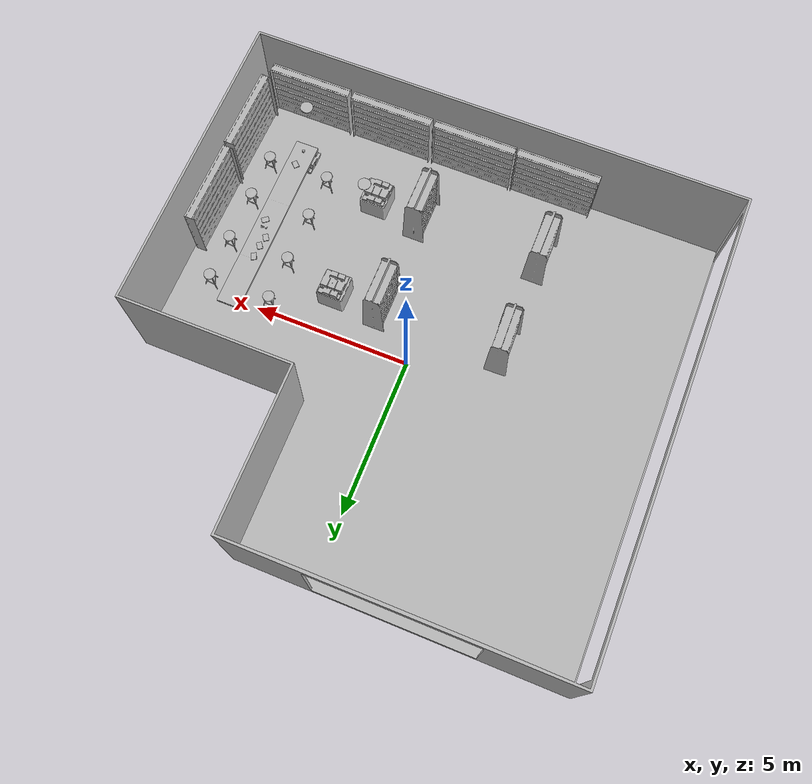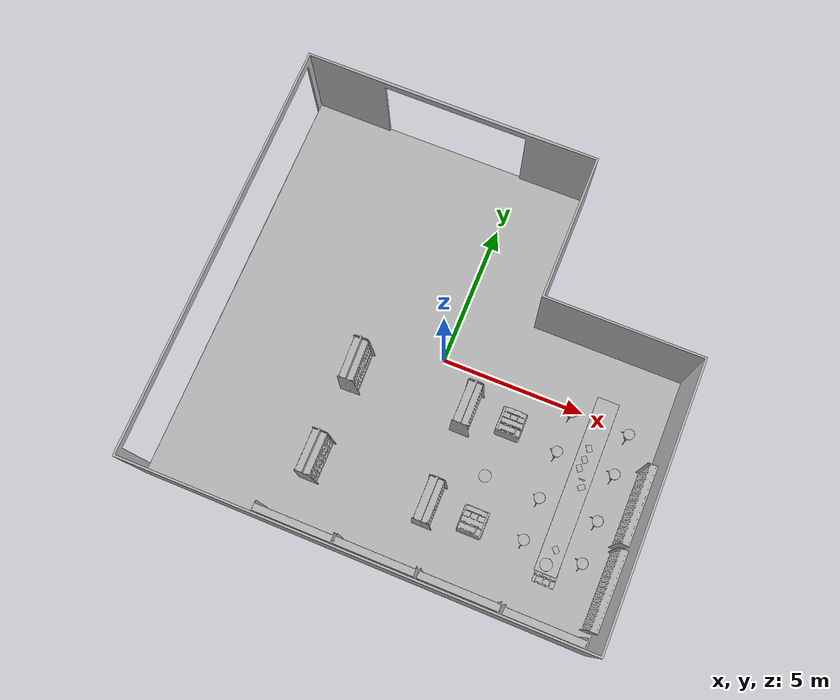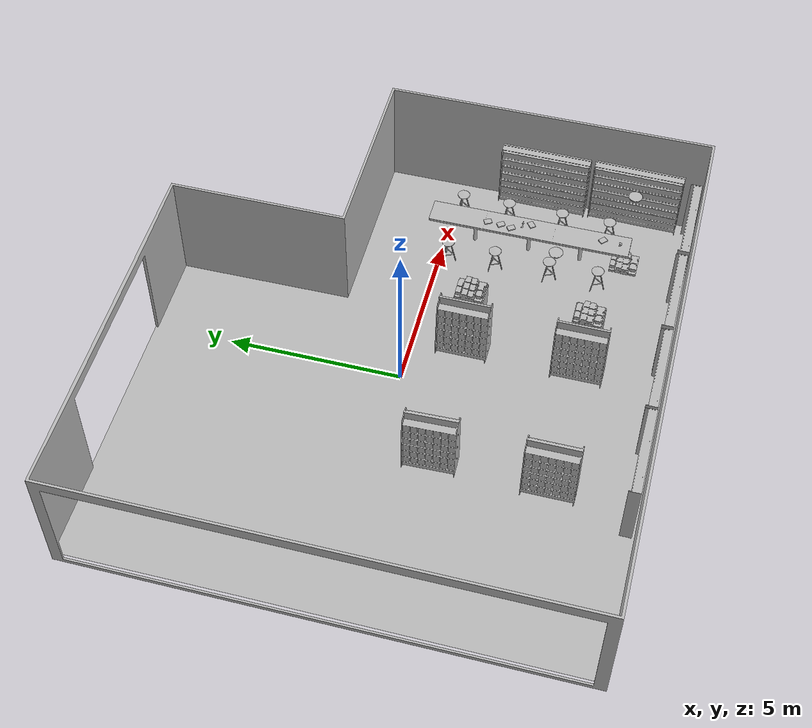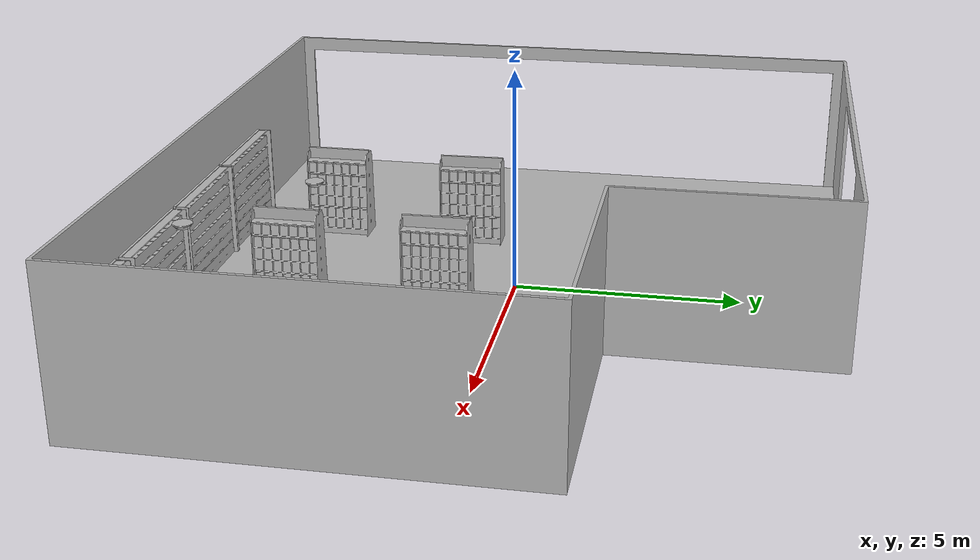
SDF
<sdf version="1.7">
 <world name="default">
  <model name="Bicycle_01_001">
   <frame name="aws_robomaker_retail_Bicycle_01::__model__" attached_to="aws_robomaker_retail_Bicycle_01::link">
    <pose relative_to="__model__">0 0 0 0 -0 0</pose>
   </frame>
   <link name="aws_robomaker_retail_Bicycle_01::link">
    <inertial>
     <mass>0.04</mass>
     <inertia><ixx>0.1</ixx><ixy>0</ixy><ixz>0</ixz><iyy>0.1</iyy><iyz>0</iyz><izz>0.01</izz></inertia>
    </inertial>
    <collision name="collision">
     <geometry>
      <mesh>
       <uri>file://models/aws_robomaker_retail_Bicycle_01/meshes/aws_Bicycle_01_collision.DAE</uri>
       <scale>1 1 1</scale>
      </mesh>
     </geometry>
    </collision>
    <visual name="visual">
     <geometry>
      <mesh><uri>file://models/aws_robomaker_retail_Bicycle_01/meshes/aws_Bicycle_01_visual.DAE</uri></mesh>
     </geometry>
     <meta><layer>1</layer></meta>
    </visual>
    <pose relative_to="aws_robomaker_retail_Bicycle_01::__model__">0 0 0 0 -0 0</pose>
   </link>
   <static>1</static>
   <pose>5.68125 -2.24245 0.931246 2e-06 -2.4e-05 -0</pose>
  </model>
  <model name="BookE_01_001">
   <frame name="aws_robomaker_retail_BookE_01::__model__" attached_to="aws_robomaker_retail_BookE_01::link">
    <pose relative_to="__model__">0 0 0 0 -0 0</pose>
   </frame>
   <link name="aws_robomaker_retail_BookE_01::link">
    <inertial>
     <mass>1</mass>
     <inertia><ixy>0</ixy><ixz>0</ixz><iyz>0</iyz><ixx>0.0666</ixx><iyy>0.0346</iyy><izz>0.0986</izz></inertia>
    </inertial>
    <collision name="collision">
     <geometry>
      <mesh>
       <uri>file://models/aws_robomaker_retail_BookE_01/meshes/aws_BookE_01_collision.DAE</uri>
       <scale>1 1 1</scale>
      </mesh>
     </geometry>
    </collision>
    <visual name="visual">
     <geometry>
      <mesh><uri>file://models/aws_robomaker_retail_BookE_01/meshes/aws_BookE_01_visual.DAE</uri></mesh>
     </geometry>
     <meta><layer>1</layer></meta>
    </visual>
    <pose relative_to="aws_robomaker_retail_BookE_01::__model__">0 0 0 0 -0 0</pose>
   </link>
   <static>1</static>
   <pose>5.47653 -1.93253 0.948933 4e-06 1e-06 -2.54352</pose>
  </model>
  <model name="BookE_01_003">
   <frame name="aws_robomaker_retail_BookE_01::__model__" attached_to="aws_robomaker_retail_BookE_01::link">
    <pose relative_to="__model__">0 0 0 0 -0 0</pose>
   </frame>
   <link name="aws_robomaker_retail_BookE_01::link">
    <inertial>
     <mass>1</mass>
     <inertia><ixy>0</ixy><ixz>0</ixz><iyz>0</iyz><ixx>0.0666</ixx><iyy>0.0346</iyy><izz>0.0986</izz></inertia>
    </inertial>
    <collision name="collision">
     <geometry>
      <mesh>
       <uri>file://models/aws_robomaker_retail_BookE_01/meshes/aws_BookE_01_collision.DAE</uri>
       <scale>1 1 1</scale>
      </mesh>
     </geometry>
    </collision>
    <visual name="visual">
     <geometry>
      <mesh><uri>file://models/aws_robomaker_retail_BookE_01/meshes/aws_BookE_01_visual.DAE</uri></mesh>
     </geometry>
     <meta><layer>1</layer></meta>
    </visual>
    <pose relative_to="aws_robomaker_retail_BookE_01::__model__">0 0 0 0 -0 0</pose>
   </link>
   <static>1</static>
   <pose>5.55255 -1.21421 0.948933 4e-06 -1e-06 -2.65431</pose>
  </model>
  <model name="BookE_01_004">
   <frame name="aws_robomaker_retail_BookE_01::__model__" attached_to="aws_robomaker_retail_BookE_01::link">
    <pose relative_to="__model__">0 0 0 0 -0 0</pose>
   </frame>
   <link name="aws_robomaker_retail_BookE_01::link">
    <inertial>
     <mass>1</mass>
     <inertia><ixy>0</ixy><ixz>0</ixz><iyz>0</iyz><ixx>0.0666</ixx><iyy>0.0346</iyy><izz>0.0986</izz></inertia>
    </inertial>
    <collision name="collision">
     <geometry>
      <mesh>
       <uri>file://models/aws_robomaker_retail_BookE_01/meshes/aws_BookE_01_collision.DAE</uri>
       <scale>1 1 1</scale>
      </mesh>
     </geometry>
    </collision>
    <visual name="visual">
     <geometry>
      <mesh><uri>file://models/aws_robomaker_retail_BookE_01/meshes/aws_BookE_01_visual.DAE</uri></mesh>
     </geometry>
     <meta><layer>1</layer></meta>
    </visual>
    <pose relative_to="aws_robomaker_retail_BookE_01::__model__">0 0 0 0 -0 0</pose>
   </link>
   <static>1</static>
   <pose>5.67723 -4.6492 0.946394 0.0001 6e-06 -2.35575</pose>
  </model>
  <model name="BookE_01_005">
   <frame name="aws_robomaker_retail_BookE_01::__model__" attached_to="aws_robomaker_retail_BookE_01::link">
    <pose relative_to="__model__">0 0 0 0 -0 0</pose>
   </frame>
   <link name="aws_robomaker_retail_BookE_01::link">
    <inertial>
     <mass>1</mass>
     <inertia><ixy>0</ixy><ixz>0</ixz><iyz>0</iyz><ixx>0.0666</ixx><iyy>0.0346</iyy><izz>0.0986</izz></inertia>
    </inertial>
    <collision name="collision">
     <geometry>
      <mesh>
       <uri>file://models/aws_robomaker_retail_BookE_01/meshes/aws_BookE_01_collision.DAE</uri>
       <scale>1 1 1</scale>
      </mesh>
     </geometry>
    </collision>
    <visual name="visual">
     <geometry>
      <mesh><uri>file://models/aws_robomaker_retail_BookE_01/meshes/aws_BookE_01_visual.DAE</uri></mesh>
     </geometry>
     <meta><layer>1</layer></meta>
    </visual>
    <pose relative_to="aws_robomaker_retail_BookE_01::__model__">0 0 0 0 -0 0</pose>
   </link>
   <static>1</static>
   <pose>5.53815 -1.61032 0.948933 0 0 -2.5269</pose>
  </model>
  <model name="BookE_01_011">
   <frame name="aws_robomaker_retail_BookE_01::__model__" attached_to="aws_robomaker_retail_BookE_01::link">
    <pose relative_to="__model__">0 0 0 0 -0 0</pose>
   </frame>
   <link name="aws_robomaker_retail_BookE_01::link">
    <inertial>
     <mass>1</mass>
     <inertia><ixy>0</ixy><ixz>0</ixz><iyz>0</iyz><ixx>0.0666</ixx><iyy>0.0346</iyy><izz>0.0986</izz></inertia>
    </inertial>
    <collision name="collision">
     <geometry>
      <mesh>
       <uri>file://models/aws_robomaker_retail_BookE_01/meshes/aws_BookE_01_collision.DAE</uri>
       <scale>1 1 1</scale>
      </mesh>
     </geometry>
    </collision>
    <visual name="visual">
     <geometry>
      <mesh><uri>file://models/aws_robomaker_retail_BookE_01/meshes/aws_BookE_01_visual.DAE</uri></mesh>
     </geometry>
     <meta><layer>1</layer></meta>
    </visual>
    <pose relative_to="aws_robomaker_retail_BookE_01::__model__">0 0 0 0 -0 0</pose>
   </link>
   <static>1</static>
   <pose>5.74923 -2.49202 0.948933 2e-06 1e-06 2.22339</pose>
  </model>
  <model name="BookF_01_001">
   <frame name="aws_robomaker_retail_BookF_01::__model__" attached_to="aws_robomaker_retail_BookF_01::link">
    <pose relative_to="__model__">0 0 0 0 -0 0</pose>
   </frame>
   <link name="aws_robomaker_retail_BookF_01::link">
    <inertial>
     <mass>10</mass>
     <inertia>
      <ixx>0.583817</ixx>
      <ixy>0</ixy>
      <ixz>0</ixz>
      <iyy>0.502925</iyy>
      <iyz>0</iyz>
      <izz>0.99304</izz>
     </inertia>
    </inertial>
    <collision name="collision">
     <geometry>
      <mesh>
       <uri>file://models/aws_robomaker_retail_BookF_01/meshes/aws_BookF_01_collision.DAE</uri>
       <scale>1 1 1</scale>
      </mesh>
     </geometry>
    </collision>
    <visual name="visual">
     <geometry>
      <mesh><uri>file://models/aws_robomaker_retail_BookF_01/meshes/aws_BookF_01_visual.DAE</uri></mesh>
     </geometry>
     <meta><layer>1</layer></meta>
    </visual>
    <pose relative_to="aws_robomaker_retail_BookF_01::__model__">0 0 0 0 -0 0</pose>
   </link>
   <static>1</static>
   <pose>2.93178 -1.30325 0.770041 0.003448 -1.1e-05 0.003114</pose>
  </model>
  <model name="BookD_01_001">
   <frame name="aws_robomaker_retail_BookD_01::__model__" attached_to="aws_robomaker_retail_BookD_01::link">
    <pose relative_to="__model__">0 0 0 0 -0 0</pose>
   </frame>
   <link name="aws_robomaker_retail_BookD_01::link">
    <inertial><mass>0.5</mass></inertial>
    <collision name="collision">
     <geometry>
      <mesh>
       <uri>file://models/aws_robomaker_retail_BookD_01/meshes/aws_BookD_01_collision.DAE</uri>
       <scale>1 1 1</scale>
      </mesh>
     </geometry>
    </collision>
    <visual name="visual">
     <geometry>
      <mesh><uri>file://models/aws_robomaker_retail_BookD_01/meshes/aws_BookD_01_visual.DAE</uri></mesh>
     </geometry>
     <meta><layer>1</layer></meta>
    </visual>
    <pose relative_to="aws_robomaker_retail_BookD_01::__model__">0 0 0 0 -0 0</pose>
   </link>
   <static>1</static>
   <pose>5.72005 -5.36588 0.022179 0.003452 -1e-06 0.000652</pose>
  </model>
  <model name="BookF_01_002">
   <frame name="aws_robomaker_retail_BookF_01::__model__" attached_to="aws_robomaker_retail_BookF_01::link">
    <pose relative_to="__model__">0 0 0 0 -0 0</pose>
   </frame>
   <link name="aws_robomaker_retail_BookF_01::link">
    <inertial>
     <mass>10</mass>
     <inertia>
      <ixx>0.583817</ixx>
      <ixy>0</ixy>
      <ixz>0</ixz>
      <iyy>0.502925</iyy>
      <iyz>0</iyz>
      <izz>0.99304</izz>
     </inertia>
    </inertial>
    <collision name="collision">
     <geometry>
      <mesh>
       <uri>file://models/aws_robomaker_retail_BookF_01/meshes/aws_BookF_01_collision.DAE</uri>
       <scale>1 1 1</scale>
      </mesh>
     </geometry>
    </collision>
    <visual name="visual">
     <geometry>
      <mesh><uri>file://models/aws_robomaker_retail_BookF_01/meshes/aws_BookF_01_visual.DAE</uri></mesh>
     </geometry>
     <meta><layer>1</layer></meta>
    </visual>
    <pose relative_to="aws_robomaker_retail_BookF_01::__model__">0 0 0 0 -0 0</pose>
   </link>
   <static>1</static>
   <pose>2.90298 -4.76075 0.75826 0.00345 6e-06 -0.00225</pose>
  </model>
  <model name="BookshelfA_01_001">
   <frame name="aws_robomaker_retail_BookshelfA_01::__model__" attached_to="aws_robomaker_retail_BookshelfA_01::link">
    <pose relative_to="__model__">0 0 0 0 -0 0</pose>
   </frame>
   <link name="aws_robomaker_retail_BookshelfA_01::link">
    <inertial>
     <mass>50</mass>
     <inertia><ixx>27.7341</ixx><ixy>0</ixy><ixz>0</ixz><iyy>20.9361</iyy><iyz>0</iyz><izz>11.3596</izz></inertia>
    </inertial>
    <collision name="collision">
     <geometry>
      <mesh>
       <uri>file://models/aws_robomaker_retail_BookshelfA_01/meshes/aws_BookshelfA_01_collision.DAE</uri>
       <scale>1 1 1</scale>
      </mesh>
     </geometry>
    </collision>
    <visual name="visual">
     <geometry>
      <mesh><uri>file://models/aws_robomaker_retail_BookshelfA_01/meshes/aws_BookshelfA_01_visual.DAE</uri></mesh>
     </geometry>
     <meta><layer>1</layer></meta>
    </visual>
    <pose relative_to="aws_robomaker_retail_BookshelfA_01::__model__">0 0 0 0 -0 0</pose>
   </link>
   <static>1</static>
   <pose>1.40515 -1.44974 0.03755 0.00349 -3e-06 0.000696</pose>
  </model>
  <model name="BookshelfA_01_002">
   <frame name="aws_robomaker_retail_BookshelfA_01::__model__" attached_to="aws_robomaker_retail_BookshelfA_01::link">
    <pose relative_to="__model__">0 0 0 0 -0 0</pose>
   </frame>
   <link name="aws_robomaker_retail_BookshelfA_01::link">
    <inertial>
     <mass>50</mass>
     <inertia><ixx>27.7341</ixx><ixy>0</ixy><ixz>0</ixz><iyy>20.9361</iyy><iyz>0</iyz><izz>11.3596</izz></inertia>
    </inertial>
    <collision name="collision">
     <geometry>
      <mesh>
       <uri>file://models/aws_robomaker_retail_BookshelfA_01/meshes/aws_BookshelfA_01_collision.DAE</uri>
       <scale>1 1 1</scale>
      </mesh>
     </geometry>
    </collision>
    <visual name="visual">
     <geometry>
      <mesh><uri>file://models/aws_robomaker_retail_BookshelfA_01/meshes/aws_BookshelfA_01_visual.DAE</uri></mesh>
     </geometry>
     <meta><layer>1</layer></meta>
    </visual>
    <pose relative_to="aws_robomaker_retail_BookshelfA_01::__model__">0 0 0 0 -0 0</pose>
   </link>
   <static>1</static>
   <pose>1.40515 -4.76165 0.003411 0 -0 0</pose>
  </model>
  <model name="BookshelfA_01_003">
   <frame name="aws_robomaker_retail_BookshelfA_01::__model__" attached_to="aws_robomaker_retail_BookshelfA_01::link">
    <pose relative_to="__model__">0 0 0 0 -0 0</pose>
   </frame>
   <link name="aws_robomaker_retail_BookshelfA_01::link">
    <inertial>
     <mass>50</mass>
     <inertia><ixx>27.7341</ixx><ixy>0</ixy><ixz>0</ixz><iyy>20.9361</iyy><iyz>0</iyz><izz>11.3596</izz></inertia>
    </inertial>
    <collision name="collision">
     <geometry>
      <mesh>
       <uri>file://models/aws_robomaker_retail_BookshelfA_01/meshes/aws_BookshelfA_01_collision.DAE</uri>
       <scale>1 1 1</scale>
      </mesh>
     </geometry>
    </collision>
    <visual name="visual">
     <geometry>
      <mesh><uri>file://models/aws_robomaker_retail_BookshelfA_01/meshes/aws_BookshelfA_01_visual.DAE</uri></mesh>
     </geometry>
     <meta><layer>1</layer></meta>
    </visual>
    <pose relative_to="aws_robomaker_retail_BookshelfA_01::__model__">0 0 0 0 -0 0</pose>
   </link>
   <static>1</static>
   <pose>-2.55449 -1.48746 0.006337 0.001313 -0.001987 0.031824</pose>
  </model>
  <model name="BookshelfA_01_004">
   <frame name="aws_robomaker_retail_BookshelfA_01::__model__" attached_to="aws_robomaker_retail_BookshelfA_01::link">
    <pose relative_to="__model__">0 0 0 0 -0 0</pose>
   </frame>
   <link name="aws_robomaker_retail_BookshelfA_01::link">
    <inertial>
     <mass>50</mass>
     <inertia><ixx>27.7341</ixx><ixy>0</ixy><ixz>0</ixz><iyy>20.9361</iyy><iyz>0</iyz><izz>11.3596</izz></inertia>
    </inertial>
    <collision name="collision">
     <geometry>
      <mesh>
       <uri>file://models/aws_robomaker_retail_BookshelfA_01/meshes/aws_BookshelfA_01_collision.DAE</uri>
       <scale>1 1 1</scale>
      </mesh>
     </geometry>
    </collision>
    <visual name="visual">
     <geometry>
      <mesh><uri>file://models/aws_robomaker_retail_BookshelfA_01/meshes/aws_BookshelfA_01_visual.DAE</uri></mesh>
     </geometry>
     <meta><layer>1</layer></meta>
    </visual>
    <pose relative_to="aws_robomaker_retail_BookshelfA_01::__model__">0 0 0 0 -0 0</pose>
   </link>
   <static>1</static>
   <pose>-2.60858 -4.76165 0.003411 0 -0 0</pose>
  </model>
  <model name="BookshelfB_01_002">
   <frame name="aws_robomaker_retail_BookshelfB_01::__model__" attached_to="aws_robomaker_retail_BookshelfB_01::link">
    <pose relative_to="__model__">0 0 0 0 -0 0</pose>
   </frame>
   <link name="aws_robomaker_retail_BookshelfB_01::link">
    <inertial>
     <mass>50</mass>
     <inertia><ixx>19.8742</ixx><ixy>0</ixy><ixz>0</ixz><iyy>49.1263</iyy><iyz>0</iyz><izz>30.2231</izz></inertia>
    </inertial>
    <collision name="collision">
     <geometry>
      <mesh>
       <uri>file://models/aws_robomaker_retail_BookshelfB_01/meshes/aws_BookshelfB_01_collision.DAE</uri>
       <scale>1 1 1</scale>
      </mesh>
     </geometry>
    </collision>
    <visual name="visual">
     <geometry>
      <mesh><uri>file://models/aws_robomaker_retail_BookshelfB_01/meshes/aws_BookshelfB_01_visual.DAE</uri></mesh>
     </geometry>
     <meta><layer>1</layer></meta>
    </visual>
    <pose relative_to="aws_robomaker_retail_BookshelfB_01::__model__">0 0 0 0 -0 0</pose>
   </link>
   <static>1</static>
   <pose>-2.20941 -6.97146 0.017074 -0.000128 -0.000252 0.000364</pose>
  </model>
  <model name="BookshelfB_01_003">
   <frame name="aws_robomaker_retail_BookshelfB_01::__model__" attached_to="aws_robomaker_retail_BookshelfB_01::link">
    <pose relative_to="__model__">0 0 0 0 -0 0</pose>
   </frame>
   <link name="aws_robomaker_retail_BookshelfB_01::link">
    <inertial>
     <mass>50</mass>
     <inertia><ixx>19.8742</ixx><ixy>0</ixy><ixz>0</ixz><iyy>49.1263</iyy><iyz>0</iyz><izz>30.2231</izz></inertia>
    </inertial>
    <collision name="collision">
     <geometry>
      <mesh>
       <uri>file://models/aws_robomaker_retail_BookshelfB_01/meshes/aws_BookshelfB_01_collision.DAE</uri>
       <scale>1 1 1</scale>
      </mesh>
     </geometry>
    </collision>
    <visual name="visual">
     <geometry>
      <mesh><uri>file://models/aws_robomaker_retail_BookshelfB_01/meshes/aws_BookshelfB_01_visual.DAE</uri></mesh>
     </geometry>
     <meta><layer>1</layer></meta>
    </visual>
    <pose relative_to="aws_robomaker_retail_BookshelfB_01::__model__">0 0 0 0 -0 0</pose>
   </link>
   <static>1</static>
   <pose>0.522246 -6.9715 0.017947 -0.003292 0 0</pose>
  </model>
  <model name="BookshelfB_01_004">
   <frame name="aws_robomaker_retail_BookshelfB_01::__model__" attached_to="aws_robomaker_retail_BookshelfB_01::link">
    <pose relative_to="__model__">0 0 0 0 -0 0</pose>
   </frame>
   <link name="aws_robomaker_retail_BookshelfB_01::link">
    <inertial>
     <mass>50</mass>
     <inertia><ixx>19.8742</ixx><ixy>0</ixy><ixz>0</ixz><iyy>49.1263</iyy><iyz>0</iyz><izz>30.2231</izz></inertia>
    </inertial>
    <collision name="collision">
     <geometry>
      <mesh>
       <uri>file://models/aws_robomaker_retail_BookshelfB_01/meshes/aws_BookshelfB_01_collision.DAE</uri>
       <scale>1 1 1</scale>
      </mesh>
     </geometry>
    </collision>
    <visual name="visual">
     <geometry>
      <mesh><uri>file://models/aws_robomaker_retail_BookshelfB_01/meshes/aws_BookshelfB_01_visual.DAE</uri></mesh>
     </geometry>
     <meta><layer>1</layer></meta>
    </visual>
    <pose relative_to="aws_robomaker_retail_BookshelfB_01::__model__">0 0 0 0 -0 0</pose>
   </link>
   <static>1</static>
   <pose>3.29339 -6.96366 0.017383 8e-06 -2e-06 -0</pose>
  </model>
  <model name="BookshelfB_01_005">
   <frame name="aws_robomaker_retail_BookshelfB_01::__model__" attached_to="aws_robomaker_retail_BookshelfB_01::link">
    <pose relative_to="__model__">0 0 0 0 -0 0</pose>
   </frame>
   <link name="aws_robomaker_retail_BookshelfB_01::link">
    <inertial>
     <mass>50</mass>
     <inertia><ixx>19.8742</ixx><ixy>0</ixy><ixz>0</ixz><iyy>49.1263</iyy><iyz>0</iyz><izz>30.2231</izz></inertia>
    </inertial>
    <collision name="collision">
     <geometry>
      <mesh>
       <uri>file://models/aws_robomaker_retail_BookshelfB_01/meshes/aws_BookshelfB_01_collision.DAE</uri>
       <scale>1 1 1</scale>
      </mesh>
     </geometry>
    </collision>
    <visual name="visual">
     <geometry>
      <mesh><uri>file://models/aws_robomaker_retail_BookshelfB_01/meshes/aws_BookshelfB_01_visual.DAE</uri></mesh>
     </geometry>
     <meta><layer>1</layer></meta>
    </visual>
    <pose relative_to="aws_robomaker_retail_BookshelfB_01::__model__">0 0 0 0 -0 0</pose>
   </link>
   <static>1</static>
   <pose>6.08038 -6.98766 0.017409 0.000174 4e-06 0</pose>
  </model>
  <model name="BookshelfB_01_006">
   <frame name="aws_robomaker_retail_BookshelfB_01::__model__" attached_to="aws_robomaker_retail_BookshelfB_01::link">
    <pose relative_to="__model__">0 0 0 0 -0 0</pose>
   </frame>
   <link name="aws_robomaker_retail_BookshelfB_01::link">
    <inertial>
     <mass>50</mass>
     <inertia><ixx>19.8742</ixx><ixy>0</ixy><ixz>0</ixz><iyy>49.1263</iyy><iyz>0</iyz><izz>30.2231</izz></inertia>
    </inertial>
    <collision name="collision">
     <geometry>
      <mesh>
       <uri>file://models/aws_robomaker_retail_BookshelfB_01/meshes/aws_BookshelfB_01_collision.DAE</uri>
       <scale>1 1 1</scale>
      </mesh>
     </geometry>
    </collision>
    <visual name="visual">
     <geometry>
      <mesh><uri>file://models/aws_robomaker_retail_BookshelfB_01/meshes/aws_BookshelfB_01_visual.DAE</uri></mesh>
     </geometry>
     <meta><layer>1</layer></meta>
    </visual>
    <pose relative_to="aws_robomaker_retail_BookshelfB_01::__model__">0 0 0 0 -0 0</pose>
   </link>
   <static>1</static>
   <pose>7.47833 -5.2983 0.017443 -0.001974 -0.000211 1.55406</pose>
  </model>
  <model name="BookshelfB_01_007">
   <frame name="aws_robomaker_retail_BookshelfB_01::__model__" attached_to="aws_robomaker_retail_BookshelfB_01::link">
    <pose relative_to="__model__">0 0 0 0 -0 0</pose>
   </frame>
   <link name="aws_robomaker_retail_BookshelfB_01::link">
    <inertial>
     <mass>50</mass>
     <inertia><ixx>19.8742</ixx><ixy>0</ixy><ixz>0</ixz><iyy>49.1263</iyy><iyz>0</iyz><izz>30.2231</izz></inertia>
    </inertial>
    <collision name="collision">
     <geometry>
      <mesh>
       <uri>file://models/aws_robomaker_retail_BookshelfB_01/meshes/aws_BookshelfB_01_collision.DAE</uri>
       <scale>1 1 1</scale>
      </mesh>
     </geometry>
    </collision>
    <visual name="visual">
     <geometry>
      <mesh><uri>file://models/aws_robomaker_retail_BookshelfB_01/meshes/aws_BookshelfB_01_visual.DAE</uri></mesh>
     </geometry>
     <meta><layer>1</layer></meta>
    </visual>
    <pose relative_to="aws_robomaker_retail_BookshelfB_01::__model__">0 0 0 0 -0 0</pose>
   </link>
   <static>1</static>
   <pose>7.47833 -2.51065 0.017402 1e-05 -1.3e-05 1.56207</pose>
  </model>
  <model name="BookshelfC_01_001">
   <frame name="aws_robomaker_retail_BookshelfC_01::__model__" attached_to="aws_robomaker_retail_BookshelfC_01::link">
    <pose relative_to="__model__">0 0 0 0 -0 0</pose>
   </frame>
   <link name="aws_robomaker_retail_BookshelfC_01::link">
    <inertial>
     <mass>50</mass>
     <inertia><ixx>5.5865</ixx><ixy>0</ixy><ixz>0</ixz><iyy>5.47324</iyy><iyz>0</iyz><izz>6.23277</izz></inertia>
    </inertial>
    <collision name="collision">
     <geometry>
      <mesh>
       <uri>file://models/aws_robomaker_retail_BookshelfC_01/meshes/aws_BookshelfC_01_collision.DAE</uri>
       <scale>1 1 1</scale>
      </mesh>
     </geometry>
    </collision>
    <visual name="visual">
     <geometry>
      <mesh><uri>file://models/aws_robomaker_retail_BookshelfC_01/meshes/aws_BookshelfC_01_visual.DAE</uri></mesh>
     </geometry>
     <meta><layer>1</layer></meta>
    </visual>
    <pose relative_to="aws_robomaker_retail_BookshelfC_01::__model__">0 0 0 0 -0 0</pose>
   </link>
   <static>1</static>
   <pose>2.91113 -1.31023 0.008469 0.003452 -3e-06 0.00062</pose>
  </model>
  <model name="BookshelfC_01_002">
   <frame name="aws_robomaker_retail_BookshelfC_01::__model__" attached_to="aws_robomaker_retail_BookshelfC_01::link">
    <pose relative_to="__model__">0 0 0 0 -0 0</pose>
   </frame>
   <link name="aws_robomaker_retail_BookshelfC_01::link">
    <inertial>
     <mass>50</mass>
     <inertia><ixx>5.5865</ixx><ixy>0</ixy><ixz>0</ixz><iyy>5.47324</iyy><iyz>0</iyz><izz>6.23277</izz></inertia>
    </inertial>
    <collision name="collision">
     <geometry>
      <mesh>
       <uri>file://models/aws_robomaker_retail_BookshelfC_01/meshes/aws_BookshelfC_01_collision.DAE</uri>
       <scale>1 1 1</scale>
      </mesh>
     </geometry>
    </collision>
    <visual name="visual">
     <geometry>
      <mesh><uri>file://models/aws_robomaker_retail_BookshelfC_01/meshes/aws_BookshelfC_01_visual.DAE</uri></mesh>
     </geometry>
     <meta><layer>1</layer></meta>
    </visual>
    <pose relative_to="aws_robomaker_retail_BookshelfC_01::__model__">0 0 0 0 -0 0</pose>
   </link>
   <static>1</static>
   <pose>2.91545 -4.76171 -0.003455 0.003452 -0 1.4e-05</pose>
  </model>
  <model name="ChairB_01_001">
   <frame name="aws_robomaker_retail_ChairB_01::__model__" attached_to="aws_robomaker_retail_ChairB_01::link">
    <pose relative_to="__model__">0 0 0 0 -0 0</pose>
   </frame>
   <link name="aws_robomaker_retail_ChairB_01::link">
    <inertial>
     <mass>3</mass>
     <inertia>
      <ixx>0.188185</ixx>
      <ixy>0</ixy>
      <ixz>0</ixz>
      <iyy>0.190617</iyy>
      <iyz>0</iyz>
      <izz>0.100999</izz>
     </inertia>
    </inertial>
    <collision name="collision">
     <geometry>
      <mesh>
       <uri>file://models/aws_robomaker_retail_ChairB_01/meshes/aws_ChairB_01_collision.DAE</uri>
       <scale>1 1 1</scale>
      </mesh>
     </geometry>
    </collision>
    <visual name="visual">
     <geometry>
      <mesh><uri>file://models/aws_robomaker_retail_ChairB_01/meshes/aws_ChairB_01_visual.DAE</uri></mesh>
     </geometry>
     <meta><layer>1</layer></meta>
    </visual>
    <pose relative_to="aws_robomaker_retail_ChairB_01::__model__">0 0 0 0 -0 0</pose>
   </link>
   <static>1</static>
   <pose>6.64396 -0.210457 0.022051 0 0.006174 8.8e-05</pose>
  </model>
  <model name="ChairB_01_002">
   <frame name="aws_robomaker_retail_ChairB_01::__model__" attached_to="aws_robomaker_retail_ChairB_01::link">
    <pose relative_to="__model__">0 0 0 0 -0 0</pose>
   </frame>
   <link name="aws_robomaker_retail_ChairB_01::link">
    <inertial>
     <mass>3</mass>
     <inertia>
      <ixx>0.188185</ixx>
      <ixy>0</ixy>
      <ixz>0</ixz>
      <iyy>0.190617</iyy>
      <iyz>0</iyz>
      <izz>0.100999</izz>
     </inertia>
    </inertial>
    <collision name="collision">
     <geometry>
      <mesh>
       <uri>file://models/aws_robomaker_retail_ChairB_01/meshes/aws_ChairB_01_collision.DAE</uri>
       <scale>1 1 1</scale>
      </mesh>
     </geometry>
    </collision>
    <visual name="visual">
     <geometry>
      <mesh><uri>file://models/aws_robomaker_retail_ChairB_01/meshes/aws_ChairB_01_visual.DAE</uri></mesh>
     </geometry>
     <meta><layer>1</layer></meta>
    </visual>
    <pose relative_to="aws_robomaker_retail_ChairB_01::__model__">0 0 0 0 -0 0</pose>
   </link>
   <static>1</static>
   <pose>6.64396 -1.62199 0.022051 0 0.006174 8.8e-05</pose>
  </model>
  <model name="ChairB_01_003">
   <frame name="aws_robomaker_retail_ChairB_01::__model__" attached_to="aws_robomaker_retail_ChairB_01::link">
    <pose relative_to="__model__">0 0 0 0 -0 0</pose>
   </frame>
   <link name="aws_robomaker_retail_ChairB_01::link">
    <inertial>
     <mass>3</mass>
     <inertia>
      <ixx>0.188185</ixx>
      <ixy>0</ixy>
      <ixz>0</ixz>
      <iyy>0.190617</iyy>
      <iyz>0</iyz>
      <izz>0.100999</izz>
     </inertia>
    </inertial>
    <collision name="collision">
     <geometry>
      <mesh>
       <uri>file://models/aws_robomaker_retail_ChairB_01/meshes/aws_ChairB_01_collision.DAE</uri>
       <scale>1 1 1</scale>
      </mesh>
     </geometry>
    </collision>
    <visual name="visual">
     <geometry>
      <mesh><uri>file://models/aws_robomaker_retail_ChairB_01/meshes/aws_ChairB_01_visual.DAE</uri></mesh>
     </geometry>
     <meta><layer>1</layer></meta>
    </visual>
    <pose relative_to="aws_robomaker_retail_ChairB_01::__model__">0 0 0 0 -0 0</pose>
   </link>
   <static>1</static>
   <pose>6.64396 -3.24663 0.022051 0 0.006174 8.8e-05</pose>
  </model>
  <model name="ChairB_01_004">
   <frame name="aws_robomaker_retail_ChairB_01::__model__" attached_to="aws_robomaker_retail_ChairB_01::link">
    <pose relative_to="__model__">0 0 0 0 -0 0</pose>
   </frame>
   <link name="aws_robomaker_retail_ChairB_01::link">
    <inertial>
     <mass>3</mass>
     <inertia>
      <ixx>0.188185</ixx>
      <ixy>0</ixy>
      <ixz>0</ixz>
      <iyy>0.190617</iyy>
      <iyz>0</iyz>
      <izz>0.100999</izz>
     </inertia>
    </inertial>
    <collision name="collision">
     <geometry>
      <mesh>
       <uri>file://models/aws_robomaker_retail_ChairB_01/meshes/aws_ChairB_01_collision.DAE</uri>
       <scale>1 1 1</scale>
      </mesh>
     </geometry>
    </collision>
    <visual name="visual">
     <geometry>
      <mesh><uri>file://models/aws_robomaker_retail_ChairB_01/meshes/aws_ChairB_01_visual.DAE</uri></mesh>
     </geometry>
     <meta><layer>1</layer></meta>
    </visual>
    <pose relative_to="aws_robomaker_retail_ChairB_01::__model__">0 0 0 0 -0 0</pose>
   </link>
   <static>1</static>
   <pose>6.64396 -4.6816 0.022051 0 0.006174 8.8e-05</pose>
  </model>
  <model name="ChairB_01_005">
   <frame name="aws_robomaker_retail_ChairB_01::__model__" attached_to="aws_robomaker_retail_ChairB_01::link">
    <pose relative_to="__model__">0 0 0 0 -0 0</pose>
   </frame>
   <link name="aws_robomaker_retail_ChairB_01::link">
    <inertial>
     <mass>3</mass>
     <inertia>
      <ixx>0.188185</ixx>
      <ixy>0</ixy>
      <ixz>0</ixz>
      <iyy>0.190617</iyy>
      <iyz>0</iyz>
      <izz>0.100999</izz>
     </inertia>
    </inertial>
    <collision name="collision">
     <geometry>
      <mesh>
       <uri>file://models/aws_robomaker_retail_ChairB_01/meshes/aws_ChairB_01_collision.DAE</uri>
       <scale>1 1 1</scale>
      </mesh>
     </geometry>
    </collision>
    <visual name="visual">
     <geometry>
      <mesh><uri>file://models/aws_robomaker_retail_ChairB_01/meshes/aws_ChairB_01_visual.DAE</uri></mesh>
     </geometry>
     <meta><layer>1</layer></meta>
    </visual>
    <pose relative_to="aws_robomaker_retail_ChairB_01::__model__">0 0 0 0 -0 0</pose>
   </link>
   <static>1</static>
   <pose>4.6533 -0.210457 0.022051 0 0.006174 8.8e-05</pose>
  </model>
  <model name="ChairB_01_006">
   <frame name="aws_robomaker_retail_ChairB_01::__model__" attached_to="aws_robomaker_retail_ChairB_01::link">
    <pose relative_to="__model__">0 0 0 0 -0 0</pose>
   </frame>
   <link name="aws_robomaker_retail_ChairB_01::link">
    <inertial>
     <mass>3</mass>
     <inertia>
      <ixx>0.188185</ixx>
      <ixy>0</ixy>
      <ixz>0</ixz>
      <iyy>0.190617</iyy>
      <iyz>0</iyz>
      <izz>0.100999</izz>
     </inertia>
    </inertial>
    <collision name="collision">
     <geometry>
      <mesh>
       <uri>file://models/aws_robomaker_retail_ChairB_01/meshes/aws_ChairB_01_collision.DAE</uri>
       <scale>1 1 1</scale>
      </mesh>
     </geometry>
    </collision>
    <visual name="visual">
     <geometry>
      <mesh><uri>file://models/aws_robomaker_retail_ChairB_01/meshes/aws_ChairB_01_visual.DAE</uri></mesh>
     </geometry>
     <meta><layer>1</layer></meta>
    </visual>
    <pose relative_to="aws_robomaker_retail_ChairB_01::__model__">0 0 0 0 -0 0</pose>
   </link>
   <static>1</static>
   <pose>4.6533 -1.62199 0.022051 0 0.006174 8.8e-05</pose>
  </model>
  <model name="ChairB_01_007">
   <frame name="aws_robomaker_retail_ChairB_01::__model__" attached_to="aws_robomaker_retail_ChairB_01::link">
    <pose relative_to="__model__">0 0 0 0 -0 0</pose>
   </frame>
   <link name="aws_robomaker_retail_ChairB_01::link">
    <inertial>
     <mass>3</mass>
     <inertia>
      <ixx>0.188185</ixx>
      <ixy>0</ixy>
      <ixz>0</ixz>
      <iyy>0.190617</iyy>
      <iyz>0</iyz>
      <izz>0.100999</izz>
     </inertia>
    </inertial>
    <collision name="collision">
     <geometry>
      <mesh>
       <uri>file://models/aws_robomaker_retail_ChairB_01/meshes/aws_ChairB_01_collision.DAE</uri>
       <scale>1 1 1</scale>
      </mesh>
     </geometry>
    </collision>
    <visual name="visual">
     <geometry>
      <mesh><uri>file://models/aws_robomaker_retail_ChairB_01/meshes/aws_ChairB_01_visual.DAE</uri></mesh>
     </geometry>
     <meta><layer>1</layer></meta>
    </visual>
    <pose relative_to="aws_robomaker_retail_ChairB_01::__model__">0 0 0 0 -0 0</pose>
   </link>
   <static>1</static>
   <pose>4.6533 -3.24663 0.022051 0 0.006174 8.8e-05</pose>
  </model>
  <model name="ChairB_01_008">
   <frame name="aws_robomaker_retail_ChairB_01::__model__" attached_to="aws_robomaker_retail_ChairB_01::link">
    <pose relative_to="__model__">0 0 0 0 -0 0</pose>
   </frame>
   <link name="aws_robomaker_retail_ChairB_01::link">
    <inertial>
     <mass>3</mass>
     <inertia>
      <ixx>0.188185</ixx>
      <ixy>0</ixy>
      <ixz>0</ixz>
      <iyy>0.190617</iyy>
      <iyz>0</iyz>
      <izz>0.100999</izz>
     </inertia>
    </inertial>
    <collision name="collision">
     <geometry>
      <mesh>
       <uri>file://models/aws_robomaker_retail_ChairB_01/meshes/aws_ChairB_01_collision.DAE</uri>
       <scale>1 1 1</scale>
      </mesh>
     </geometry>
    </collision>
    <visual name="visual">
     <geometry>
      <mesh><uri>file://models/aws_robomaker_retail_ChairB_01/meshes/aws_ChairB_01_visual.DAE</uri></mesh>
     </geometry>
     <meta><layer>1</layer></meta>
    </visual>
    <pose relative_to="aws_robomaker_retail_ChairB_01::__model__">0 0 0 0 -0 0</pose>
   </link>
   <static>1</static>
   <pose>4.6533 -4.6816 0.022051 0 0.006174 8.8e-05</pose>
  </model>
  <model name="DeskB_01_001">
   <frame name="aws_robomaker_retail_DeskB_01::__model__" attached_to="aws_robomaker_retail_DeskB_01::link">
    <pose relative_to="__model__">0 0 0 0 -0 0</pose>
   </frame>
   <link name="aws_robomaker_retail_DeskB_01::link">
    <inertial>
     <mass>50</mass>
     <inertia><ixx>154.884</ixx><ixy>0</ixy><ixz>0</ixz><iyy>7.48424</iyy><iyz>0</iyz><izz>152.099</izz></inertia>
    </inertial>
    <collision name="collision">
     <geometry>
      <mesh>
       <uri>file://models/aws_robomaker_retail_DeskB_01/meshes/aws_DeskB_01_collision.DAE</uri>
       <scale>1 1 1</scale>
      </mesh>
     </geometry>
    </collision>
    <visual name="visual">
     <geometry>
      <mesh><uri>file://models/aws_robomaker_retail_DeskB_01/meshes/aws_DeskB_01_visual.DAE</uri></mesh>
     </geometry>
     <meta><layer>1</layer></meta>
    </visual>
    <pose relative_to="aws_robomaker_retail_DeskB_01::__model__">0 0 0 0 -0 0</pose>
   </link>
   <static>1</static>
   <pose>5.62294 -2.47542 -0.181282 0 -0 0</pose>
  </model>
  <model name="RetailShopFloor_01_001">
   <frame name="aws_robomaker_retail_RetailShopFloor_01::__model__" attached_to="aws_robomaker_retail_RetailShopFloor_01::link">
    <pose relative_to="__model__">0 0 0 0 -0 0</pose>
   </frame>
   <link name="aws_robomaker_retail_RetailShopFloor_01::link">
    <inertial><mass>100</mass></inertial>
    <collision name="collision">
     <geometry>
      <mesh>
       <uri>file://models/aws_robomaker_retail_RetailShopFloor_01/meshes/aws_RetailShopFloor_01_collision.DAE</uri>
       <scale>1 1 1</scale>
      </mesh>
     </geometry>
     <surface><friction><ode><mu>100</mu><mu2>50</mu2></ode></friction></surface>
    </collision>
    <visual name="visual">
     <geometry>
      <mesh>
       <uri>file://models/aws_robomaker_retail_RetailShopFloor_01/meshes/aws_RetailShopFloor_01_visual.DAE</uri>
      </mesh>
     </geometry>
     <meta><layer>1</layer></meta>
    </visual>
    <pose relative_to="aws_robomaker_retail_RetailShopFloor_01::__model__">0 0 0 0 -0 0</pose>
   </link>
   <static>1</static>
   <pose>-0.002687 0 -0.276618 0 -0 0</pose>
  </model>
  <model name="RetailShopWall_01_001">
   <frame name="aws_robomaker_retail_RetailShopWall_01::__model__" attached_to="aws_robomaker_retail_RetailShopWall_01::link">
    <pose relative_to="__model__">0 0 0 0 -0 0</pose>
   </frame>
   <link name="aws_robomaker_retail_RetailShopWall_01::link">
    <inertial><mass>1</mass></inertial>
    <collision name="collision">
     <geometry>
      <mesh>
       <uri>file://models/aws_robomaker_retail_RetailShopWall_01/meshes/aws_RetailShopWall_01_collision.DAE</uri>
       <scale>1 1 1</scale>
      </mesh>
     </geometry>
    </collision>
    <visual name="visual">
     <geometry>
      <mesh>
       <uri>file://models/aws_robomaker_retail_RetailShopWall_01/meshes/aws_RetailShopWall_01_visual.DAE</uri>
      </mesh>
     </geometry>
     <meta><layer>2</layer></meta>
    </visual>
    <pose relative_to="aws_robomaker_retail_RetailShopWall_01::__model__">0 0 0 0 -0 0</pose>
   </link>
   <static>1</static>
   <pose>0 0 -0.281282 0 -0 0</pose>
  </model>
  <model name="LightA_01_001">
   <frame name="aws_robomaker_retail_LightA_01::__model__" attached_to="aws_robomaker_retail_LightA_01::link">
    <pose relative_to="__model__">0 0 0 0 -0 0</pose>
   </frame>
   <link name="aws_robomaker_retail_LightA_01::link">
    <inertial><mass>1</mass></inertial>
    <collision name="collision">
     <geometry>
      <mesh>
       <uri>file://models/aws_robomaker_retail_LightA_01/meshes/aws_LightA_01_collision.DAE</uri>
       <scale>1 1 1</scale>
      </mesh>
     </geometry>
    </collision>
    <visual name="visual">
     <geometry>
      <mesh><uri>file://models/aws_robomaker_retail_LightA_01/meshes/aws_LightA_01_visual.DAE</uri></mesh>
     </geometry>
     <meta><layer>3</layer></meta>
    </visual>
    <pose relative_to="aws_robomaker_retail_LightA_01::__model__">0 0 0 0 -0 0</pose>
   </link>
   <static>1</static>
   <pose>2.77442 -3.62815 3.15033 0 -0 0</pose>
  </model>
  <model name="LightA_01_002">
   <frame name="aws_robomaker_retail_LightA_01::__model__" attached_to="aws_robomaker_retail_LightA_01::link">
    <pose relative_to="__model__">0 0 0 0 -0 0</pose>
   </frame>
   <link name="aws_robomaker_retail_LightA_01::link">
    <inertial><mass>1</mass></inertial>
    <collision name="collision">
     <geometry>
      <mesh>
       <uri>file://models/aws_robomaker_retail_LightA_01/meshes/aws_LightA_01_collision.DAE</uri>
       <scale>1 1 1</scale>
      </mesh>
     </geometry>
    </collision>
    <visual name="visual">
     <geometry>
      <mesh><uri>file://models/aws_robomaker_retail_LightA_01/meshes/aws_LightA_01_visual.DAE</uri></mesh>
     </geometry>
     <meta><layer>3</layer></meta>
    </visual>
    <pose relative_to="aws_robomaker_retail_LightA_01::__model__">0 0 0 0 -0 0</pose>
   </link>
   <static>1</static>
   <pose>5.38399 -5.38371 3.15033 0 -0 0</pose>
  </model>
  <model name="MagicCube_01_001">
   <frame name="aws_robomaker_retail_MagicCube_01::__model__" attached_to="aws_robomaker_retail_MagicCube_01::link">
    <pose relative_to="__model__">0 0 0 0 -0 0</pose>
   </frame>
   <link name="aws_robomaker_retail_MagicCube_01::link">
    <inertial>
     <mass>0.2</mass>
     <inertia><ixx>0.01</ixx><ixy>0</ixy><ixz>0</ixz><iyy>0.01</iyy><iyz>0</iyz><izz>0.01</izz></inertia>
    </inertial>
    <collision name="collision">
     <geometry>
      <mesh>
       <uri>file://models/aws_robomaker_retail_MagicCube_01/meshes/aws_MagicCube_01_collision.DAE</uri>
       <scale>1 1 1</scale>
      </mesh>
     </geometry>
    </collision>
    <visual name="visual">
     <geometry>
      <mesh><uri>file://models/aws_robomaker_retail_MagicCube_01/meshes/aws_MagicCube_01_visual.DAE</uri></mesh>
     </geometry>
     <meta><layer>1</layer></meta>
    </visual>
    <pose relative_to="aws_robomaker_retail_MagicCube_01::__model__">0 0 0 0 -0 0</pose>
   </link>
   <static>1</static>
   <pose>5.66756 -5.17491 0.968597 1.55994 -1e-06 -1.55541</pose>
  </model>
 </world>
</sdf>
